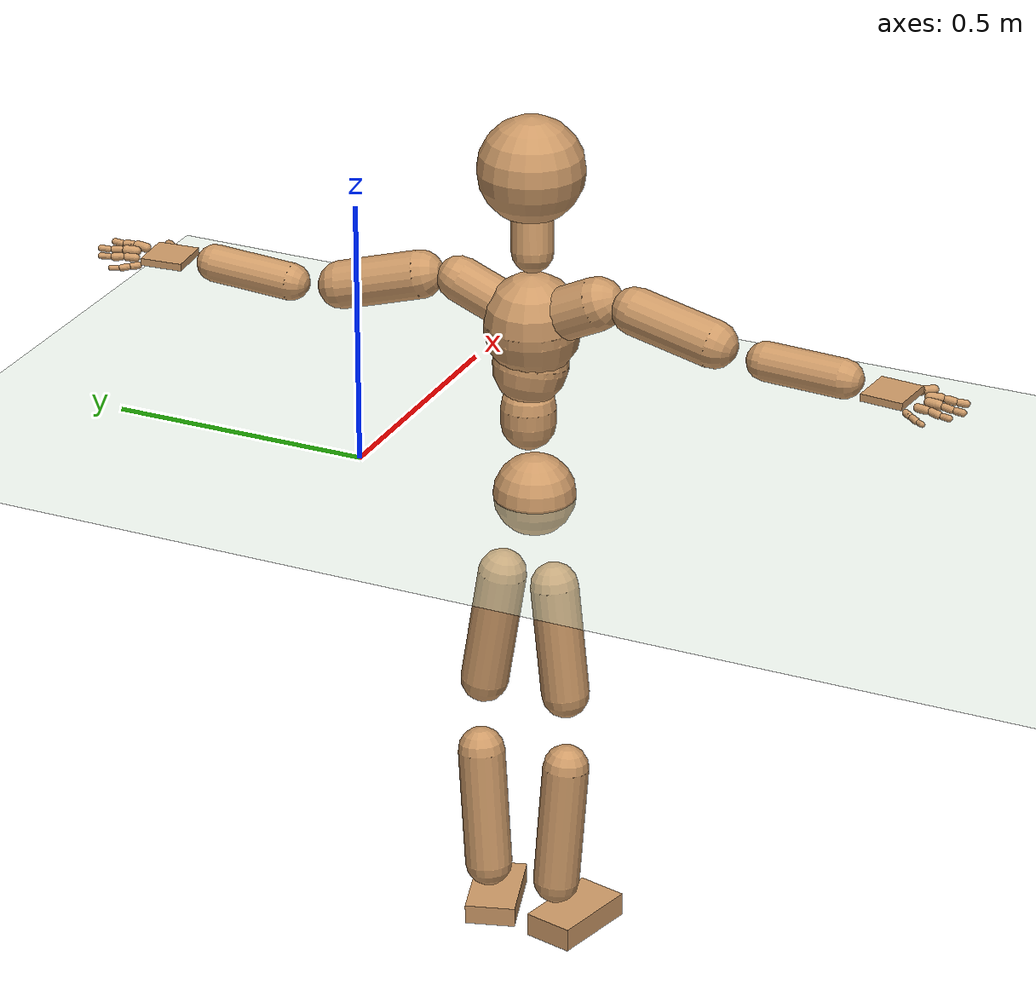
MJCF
<mujoco model="humanoid">
  <compiler coordinate="local" angle="radian"/>
  <default>
    <joint damping="0.0" armature="0.01" stiffness="0.0" limited="true"/>
    <geom conaffinity="1" condim="3" contype="7" margin="0.001" rgba="0.8 0.6 .4 1"/>
  </default>
  <asset>
    <texture type="skybox" builtin="gradient" rgb1=".4 .5 .6" rgb2="0 0 0" width="100" height="100"/>
    <texture builtin="flat" height="1278" mark="cross" markrgb="1 1 1" name="texgeom" random="0.01" rgb1="0.8 0.6 0.4" rgb2="0.8 0.6 0.4" type="cube" width="127"/>
    <texture builtin="checker" height="100" name="texplane" rgb1="0 0 0" rgb2="0.8 0.8 0.8" type="2d" width="100"/>
    <material name="MatPlane" reflectance="0.5" shininess="1" specular="1" texrepeat="60 60" texture="texplane"/>
    <material name="geom" texture="texgeom" texuniform="true"/>
  </asset>
  <worldbody>
    <light cutoff="100" diffuse="1 1 1" dir="-0 0 -1.3" directional="true" exponent="1" pos="0 0 1.3" specular=".1 .1 .1"/>
    <geom conaffinity="1" condim="3" name="floor" pos="0 0 0" rgba="0.8 0.9 0.8 1" size="100 100 .2" type="plane" material="MatPlane"/>
    <body name="Pelvis" pos="0.0004 -0.3542 0.0013">
      <freejoint name="Pelvis"/>
      <geom type="sphere" contype="1" conaffinity="1" density="500" size="0.0764" pos="0.0000 0.0000 0.0000" name="Pelvis"/>
      <body name="L_Hip" pos="-0.0248 0.0409 -0.085">
        <joint name="L_Hip_x" type="hinge" pos="0 0 0" axis="1 0 0" stiffness="800" damping="80" armature="0.02" range="-180.0000 180.0000"/>
        <joint name="L_Hip_y" type="hinge" pos="0 0 0" axis="0 1 0" stiffness="800" damping="80" armature="0.02" range="-180.0000 180.0000"/>
        <joint name="L_Hip_z" type="hinge" pos="0 0 0" axis="0 0 1" stiffness="800" damping="80" armature="0.02" range="-180.0000 180.0000"/>
        <geom type="capsule" contype="1" conaffinity="1" density="500" fromto="-0.0013 0.0113 -0.0745 -0.0053 0.0454 -0.2982" size="0.045" name="L_Hip"/>
        <body name="L_Knee" pos="-0.0066 0.0567 -0.3727">
          <joint name="L_Knee_x" type="hinge" pos="0 0 0" axis="1 0 0" stiffness="800" damping="80" armature="0.02" range="-180.0000 180.0000"/>
          <joint name="L_Knee_y" type="hinge" pos="0 0 0" axis="0 1 0" stiffness="800" damping="80" armature="0.02" range="-180.0000 180.0000"/>
          <joint name="L_Knee_z" type="hinge" pos="0 0 0" axis="0 0 1" stiffness="800" damping="80" armature="0.02" range="-180.0000 180.0000"/>
          <geom type="capsule" contype="1" conaffinity="1" density="500" fromto="-0.0059 -0.0077 -0.0755 -0.0237 -0.0308 -0.3021" size="0.0442" name="L_Knee"/>
          <body name="L_Ankle" pos="-0.0297 -0.0385 -0.3776">
            <joint name="L_Ankle_x" type="hinge" pos="0 0 0" axis="1 0 0" stiffness="800" damping="80" armature="0.02" range="-180.0000 180.0000"/>
            <joint name="L_Ankle_y" type="hinge" pos="0 0 0" axis="0 1 0" stiffness="800" damping="80" armature="0.02" range="-180.0000 180.0000"/>
            <joint name="L_Ankle_z" type="hinge" pos="0 0 0" axis="0 0 1" stiffness="800" damping="80" armature="0.02" range="-180.0000 180.0000"/>
            <geom type="box" contype="1" conaffinity="1" density="500" pos="0.0629 0.0191 -0.0277" size="0.0845 0.0471 0.0188" quat="0.9892 0.0000 0.0000 0.1468" name="L_Ankle"/>
            <body name="L_Toe" pos="0.1258 0.0382 -0.0554">
              <joint name="L_Toe_x" type="hinge" pos="0 0 0" axis="1 0 0" stiffness="500" damping="50" armature="0.02" range="-180.0000 180.0000"/>
              <joint name="L_Toe_y" type="hinge" pos="0 0 0" axis="0 1 0" stiffness="500" damping="50" armature="0.02" range="-180.0000 180.0000"/>
              <joint name="L_Toe_z" type="hinge" pos="0 0 0" axis="0 0 1" stiffness="500" damping="50" armature="0.02" range="-180.0000 180.0000"/>
              <geom type="box" contype="1" conaffinity="1" density="500" pos="0.0000 0.0000 0.0290" size="0.0009 0.0023 0.001" quat="0.9884 0.0000 0.0000 0.1517" name="L_Toe"/>
            </body>
          </body>
        </body>
      </body>
      <body name="R_Hip" pos="-0.0208 -0.0419 -0.0944">
        <joint name="R_Hip_x" type="hinge" pos="0 0 0" axis="1 0 0" stiffness="800" damping="80" armature="0.02" range="-180.0000 180.0000"/>
        <joint name="R_Hip_y" type="hinge" pos="0 0 0" axis="0 1 0" stiffness="800" damping="80" armature="0.02" range="-180.0000 180.0000"/>
        <joint name="R_Hip_z" type="hinge" pos="0 0 0" axis="0 0 1" stiffness="800" damping="80" armature="0.02" range="-180.0000 180.0000"/>
        <geom type="capsule" contype="1" conaffinity="1" density="500" fromto="-0.0023 -0.0089 -0.0713 -0.0092 -0.0355 -0.2854" size="0.0444" name="R_Hip"/>
        <body name="R_Knee" pos="-0.0115 -0.0444 -0.3567">
          <joint name="R_Knee_x" type="hinge" pos="0 0 0" axis="1 0 0" stiffness="800" damping="80" armature="0.02" range="-180.0000 180.0000"/>
          <joint name="R_Knee_y" type="hinge" pos="0 0 0" axis="0 1 0" stiffness="800" damping="80" armature="0.02" range="-180.0000 180.0000"/>
          <joint name="R_Knee_z" type="hinge" pos="0 0 0" axis="0 0 1" stiffness="800" damping="80" armature="0.02" range="-180.0000 180.0000"/>
          <geom type="capsule" contype="1" conaffinity="1" density="500" fromto="-0.0057 0.0034 -0.0781 -0.0227 0.0136 -0.3125" size="0.0433" name="R_Knee"/>
          <body name="R_Ankle" pos="-0.0283 0.0171 -0.3906">
            <joint name="R_Ankle_x" type="hinge" pos="0 0 0" axis="1 0 0" stiffness="800" damping="80" armature="0.02" range="-180.0000 180.0000"/>
            <joint name="R_Ankle_y" type="hinge" pos="0 0 0" axis="0 1 0" stiffness="800" damping="80" armature="0.02" range="-180.0000 180.0000"/>
            <joint name="R_Ankle_z" type="hinge" pos="0 0 0" axis="0 0 1" stiffness="800" damping="80" armature="0.02" range="-180.0000 180.0000"/>
            <geom type="box" contype="1" conaffinity="1" density="500" pos="0.0658 -0.0155 -0.0276" size="0.0845 0.0475 0.0227" quat="0.9933 0.0000 0.0000 -0.1158" name="R_Ankle"/>
            <body name="R_Toe" pos="0.1315 -0.0311 -0.0552">
              <joint name="R_Toe_x" type="hinge" pos="0 0 0" axis="1 0 0" stiffness="500" damping="50" armature="0.02" range="-180.0000 180.0000"/>
              <joint name="R_Toe_y" type="hinge" pos="0 0 0" axis="0 1 0" stiffness="500" damping="50" armature="0.02" range="-180.0000 180.0000"/>
              <joint name="R_Toe_z" type="hinge" pos="0 0 0" axis="0 0 1" stiffness="500" damping="50" armature="0.02" range="-180.0000 180.0000"/>
              <geom type="box" contype="1" conaffinity="1" density="500" pos="0.0000 0.0000 0.0250" size="0.0009 0.0023 0.001" quat="0.9943 0.0000 0.0000 -0.1070" name="R_Toe"/>
            </body>
          </body>
        </body>
      </body>
      <body name="Torso" pos="-0.0263 0.0004 0.0975">
        <joint name="Torso_x" type="hinge" pos="0 0 0" axis="1 0 0" stiffness="1000" damping="100" armature="0.02" range="-180.0000 180.0000"/>
        <joint name="Torso_y" type="hinge" pos="0 0 0" axis="0 1 0" stiffness="1000" damping="100" armature="0.02" range="-180.0000 180.0000"/>
        <joint name="Torso_z" type="hinge" pos="0 0 0" axis="0 0 1" stiffness="1000" damping="100" armature="0.02" range="-180.0000 180.0000"/>
        <geom type="capsule" contype="1" conaffinity="1" density="500" fromto="0.0027 0.0015 0.0851 0.0018 0.0010 0.0567" size="0.0508" name="Torso"/>
        <body name="Spine" pos="0.0046 0.0025 0.1418">
          <joint name="Spine_x" type="hinge" pos="0 0 0" axis="1 0 0" stiffness="1000" damping="100" armature="0.02" range="-180.0000 180.0000"/>
          <joint name="Spine_y" type="hinge" pos="0 0 0" axis="0 1 0" stiffness="1000" damping="100" armature="0.02" range="-180.0000 180.0000"/>
          <joint name="Spine_z" type="hinge" pos="0 0 0" axis="0 0 1" stiffness="1000" damping="100" armature="0.02" range="-180.0000 180.0000"/>
          <geom type="capsule" contype="1" conaffinity="1" density="500" fromto="0.0049 -0.0030 0.0320 0.0033 -0.0020 0.0213" size="0.069" name="Spine"/>
          <body name="Chest" pos="0.0082 -0.005 0.0533">
            <joint name="Chest_x" type="hinge" pos="0 0 0" axis="1 0 0" stiffness="1000" damping="100" armature="0.02" range="-180.0000 180.0000"/>
            <joint name="Chest_y" type="hinge" pos="0 0 0" axis="0 1 0" stiffness="1000" damping="100" armature="0.02" range="-180.0000 180.0000"/>
            <joint name="Chest_z" type="hinge" pos="0 0 0" axis="0 0 1" stiffness="1000" damping="100" armature="0.02" range="-180.0000 180.0000"/>
            <geom type="capsule" contype="1" conaffinity="1" density="500" fromto="-0.0049 -0.0006 0.0596 -0.0033 -0.0004 0.0397" size="0.0874" name="Chest"/>
            <body name="Neck" pos="-0.0141 -0.0054 0.1559">
              <joint name="Neck_x" type="hinge" pos="0 0 0" axis="1 0 0" stiffness="500" damping="50" armature="0.02" range="-180.0000 180.0000"/>
              <joint name="Neck_y" type="hinge" pos="0 0 0" axis="0 1 0" stiffness="500" damping="50" armature="0.02" range="-180.0000 180.0000"/>
              <joint name="Neck_z" type="hinge" pos="0 0 0" axis="0 0 1" stiffness="500" damping="50" armature="0.02" range="-180.0000 180.0000"/>
              <geom type="capsule" contype="1" conaffinity="1" density="500" fromto="0.0067 0.0038 0.0358 0.0266 0.0150 0.1434" size="0.0382" name="Neck"/>
              <body name="Head" pos="0.0333 0.0188 0.1792">
                <joint name="Head_x" type="hinge" pos="0 0 0" axis="1 0 0" stiffness="500" damping="50" armature="0.02" range="-180.0000 180.0000"/>
                <joint name="Head_y" type="hinge" pos="0 0 0" axis="0 1 0" stiffness="500" damping="50" armature="0.02" range="-180.0000 180.0000"/>
                <joint name="Head_z" type="hinge" pos="0 0 0" axis="0 0 1" stiffness="500" damping="50" armature="0.02" range="-180.0000 180.0000"/>
                <geom type="sphere" contype="1" conaffinity="1" density="500" size="0.0976" pos="0.0000 0.0000 0.0000" name="Head"/>
              </body>
            </body>
            <body name="L_Thorax" pos="-0.0033 0.0389 0.0709">
              <joint name="L_Thorax_x" type="hinge" pos="0 0 0" axis="1 0 0" stiffness="500" damping="50" armature="0.02" range="-180.0000 180.0000"/>
              <joint name="L_Thorax_y" type="hinge" pos="0 0 0" axis="0 1 0" stiffness="500" damping="50" armature="0.02" range="-180.0000 180.0000"/>
              <joint name="L_Thorax_z" type="hinge" pos="0 0 0" axis="0 0 1" stiffness="500" damping="50" armature="0.02" range="-180.0000 180.0000"/>
              <geom type="capsule" contype="1" conaffinity="1" density="500" fromto="-0.0024 0.0248 0.0114 -0.0094 0.0991 0.0458" size="0.0415" name="L_Thorax"/>
              <body name="L_Shoulder" pos="-0.0118 0.1239 0.0572">
                <joint name="L_Shoulder_x" type="hinge" pos="0 0 0" axis="1 0 0" stiffness="500" damping="50" armature="0.02" range="-180.0000 180.0000"/>
                <joint name="L_Shoulder_y" type="hinge" pos="0 0 0" axis="0 1 0" stiffness="500" damping="50" armature="0.02" range="-180.0000 180.0000"/>
                <joint name="L_Shoulder_z" type="hinge" pos="0 0 0" axis="0 0 1" stiffness="500" damping="50" armature="0.02" range="-180.0000 180.0000"/>
                <geom type="capsule" contype="1" conaffinity="1" density="500" fromto="-0.0062 0.0489 -0.0133 -0.0249 0.1955 -0.0532" size="0.0443" name="L_Shoulder"/>
                <body name="L_Elbow" pos="-0.0311 0.2444 -0.0665">
                  <joint name="L_Elbow_x" type="hinge" pos="0 0 0" axis="1 0 0" stiffness="500" damping="50" armature="0.02" range="-720.0000 720.0000"/>
                  <joint name="L_Elbow_y" type="hinge" pos="0 0 0" axis="0 1 0" stiffness="500" damping="50" armature="0.02" range="-720.0000 720.0000"/>
                  <joint name="L_Elbow_z" type="hinge" pos="0 0 0" axis="0 0 1" stiffness="500" damping="50" armature="0.02" range="-720.0000 720.0000"/>
                  <geom type="capsule" contype="1" conaffinity="1" density="500" fromto="-0.0013 0.0509 0.0034 -0.0053 0.2034 0.0136" size="0.0344" name="L_Elbow"/>
                  <body name="L_Wrist" pos="-0.0066 0.2543 0.017">
                    <joint name="L_Wrist_x" type="hinge" pos="0 0 0" axis="1 0 0" stiffness="300" damping="30" armature="0.02" range="-180.0000 180.0000"/>
                    <joint name="L_Wrist_y" type="hinge" pos="0 0 0" axis="0 1 0" stiffness="300" damping="30" armature="0.02" range="-180.0000 180.0000"/>
                    <joint name="L_Wrist_z" type="hinge" pos="0 0 0" axis="0 0 1" stiffness="300" damping="30" armature="0.02" range="-180.0000 180.0000"/>
                    <geom type="box" contype="1" conaffinity="1" density="500" pos="-0.0032 0.0407 -0.0056" size="0.0395 0.0408 0.0068" quat="0.7347 0.0000 0.0000 -0.6784" name="L_Wrist"/>
                    <body name="L_Index1" pos="0.0183 0.0956 -0.0085">
                      <joint name="L_Index1_x" type="hinge" pos="0 0 0" axis="1 0 0" stiffness="100" damping="10" armature="0.02" range="-180.0000 180.0000"/>
                      <joint name="L_Index1_y" type="hinge" pos="0 0 0" axis="0 1 0" stiffness="100" damping="10" armature="0.02" range="-180.0000 180.0000"/>
                      <joint name="L_Index1_z" type="hinge" pos="0 0 0" axis="0 0 1" stiffness="100" damping="10" armature="0.02" range="-180.0000 180.0000"/>
                      <geom type="capsule" contype="1" conaffinity="1" density="500" fromto="0.0007 0.0064 0.0003 0.0028 0.0255 0.0011" size="0.0088" name="L_Index1"/>
                      <body name="L_Index2" pos="0.0034 0.0319 0.0014">
                        <joint name="L_Index2_x" type="hinge" pos="0 0 0" axis="1 0 0" stiffness="100" damping="10" armature="0.02" range="-180.0000 180.0000"/>
                        <joint name="L_Index2_y" type="hinge" pos="0 0 0" axis="0 1 0" stiffness="100" damping="10" armature="0.02" range="-180.0000 180.0000"/>
                        <joint name="L_Index2_z" type="hinge" pos="0 0 0" axis="0 0 1" stiffness="100" damping="10" armature="0.02" range="-180.0000 180.0000"/>
                        <geom type="capsule" contype="1" conaffinity="1" density="500" fromto="0.0000 0.0045 -0.0005 0.0000 0.0181 -0.0019" size="0.0073" name="L_Index2"/>
                        <body name="L_Index3" pos="0 0.0226 -0.0024">
                          <joint name="L_Index3_x" type="hinge" pos="0 0 0" axis="1 0 0" stiffness="100" damping="10" armature="0.02" range="-180.0000 180.0000"/>
                          <joint name="L_Index3_y" type="hinge" pos="0 0 0" axis="0 1 0" stiffness="100" damping="10" armature="0.02" range="-180.0000 180.0000"/>
                          <joint name="L_Index3_z" type="hinge" pos="0 0 0" axis="0 0 1" stiffness="100" damping="10" armature="0.02" range="-180.0000 180.0000"/>
                          <geom type="capsule" contype="1" conaffinity="1" density="500" fromto="0.0004 0.0049 -0.0001 0.0016 0.0197 -0.0003" size="0.0063" name="L_Index3"/>
                        </body>
                      </body>
                    </body>
                    <body name="L_Middle1" pos="-0.0047 0.1033 -0.0065">
                      <joint name="L_Middle1_x" type="hinge" pos="0 0 0" axis="1 0 0" stiffness="100" damping="10" armature="0.02" range="-180.0000 180.0000"/>
                      <joint name="L_Middle1_y" type="hinge" pos="0 0 0" axis="0 1 0" stiffness="100" damping="10" armature="0.02" range="-180.0000 180.0000"/>
                      <joint name="L_Middle1_z" type="hinge" pos="0 0 0" axis="0 0 1" stiffness="100" damping="10" armature="0.02" range="-180.0000 180.0000"/>
                      <geom type="capsule" contype="1" conaffinity="1" density="500" fromto="-0.0009 0.0061 -0.0000 -0.0035 0.0243 -0.0000" size="0.009" name="L_Middle1"/>
                      <body name="L_Middle2" pos="-0.0044 0.0304 0">
                        <joint name="L_Middle2_x" type="hinge" pos="0 0 0" axis="1 0 0" stiffness="100" damping="10" armature="0.02" range="-180.0000 180.0000"/>
                        <joint name="L_Middle2_y" type="hinge" pos="0 0 0" axis="0 1 0" stiffness="100" damping="10" armature="0.02" range="-180.0000 180.0000"/>
                        <joint name="L_Middle2_z" type="hinge" pos="0 0 0" axis="0 0 1" stiffness="100" damping="10" armature="0.02" range="-180.0000 180.0000"/>
                        <geom type="capsule" contype="1" conaffinity="1" density="500" fromto="-0.0008 0.0047 -0.0005 -0.0034 0.0187 -0.0019" size="0.0067" name="L_Middle2"/>
                        <body name="L_Middle3" pos="-0.0042 0.0234 -0.0023">
                          <joint name="L_Middle3_x" type="hinge" pos="0 0 0" axis="1 0 0" stiffness="100" damping="10" armature="0.02" range="-180.0000 180.0000"/>
                          <joint name="L_Middle3_y" type="hinge" pos="0 0 0" axis="0 1 0" stiffness="100" damping="10" armature="0.02" range="-180.0000 180.0000"/>
                          <joint name="L_Middle3_z" type="hinge" pos="0 0 0" axis="0 0 1" stiffness="100" damping="10" armature="0.02" range="-180.0000 180.0000"/>
                          <geom type="capsule" contype="1" conaffinity="1" density="500" fromto="-0.0004 0.0051 -0.0001 -0.0018 0.0203 -0.0003" size="0.0061" name="L_Middle3"/>
                        </body>
                      </body>
                    </body>
                    <body name="L_Pinky1" pos="-0.0433 0.0794 -0.0139">
                      <joint name="L_Pinky1_x" type="hinge" pos="0 0 0" axis="1 0 0" stiffness="100" damping="10" armature="0.02" range="-180.0000 180.0000"/>
                      <joint name="L_Pinky1_y" type="hinge" pos="0 0 0" axis="0 1 0" stiffness="100" damping="10" armature="0.02" range="-180.0000 180.0000"/>
                      <joint name="L_Pinky1_z" type="hinge" pos="0 0 0" axis="0 0 1" stiffness="100" damping="10" armature="0.02" range="-180.0000 180.0000"/>
                      <geom type="capsule" contype="1" conaffinity="1" density="500" fromto="-0.0023 0.0032 -0.0003 -0.0091 0.0128 -0.0012" size="0.0064" name="L_Pinky1"/>
                      <body name="L_Pinky2" pos="-0.0114 0.016 -0.0015">
                        <joint name="L_Pinky2_x" type="hinge" pos="0 0 0" axis="1 0 0" stiffness="100" damping="10" armature="0.02" range="-180.0000 180.0000"/>
                        <joint name="L_Pinky2_y" type="hinge" pos="0 0 0" axis="0 1 0" stiffness="100" damping="10" armature="0.02" range="-180.0000 180.0000"/>
                        <joint name="L_Pinky2_z" type="hinge" pos="0 0 0" axis="0 0 1" stiffness="100" damping="10" armature="0.02" range="-180.0000 180.0000"/>
                        <geom type="capsule" contype="1" conaffinity="1" density="500" fromto="-0.0022 0.0032 -0.0003 -0.0087 0.0126 -0.0013" size="0.0062" name="L_Pinky2"/>
                        <body name="L_Pinky3" pos="-0.0108 0.0158 -0.0016">
                          <joint name="L_Pinky3_x" type="hinge" pos="0 0 0" axis="1 0 0" stiffness="100" damping="10" armature="0.02" range="-180.0000 180.0000"/>
                          <joint name="L_Pinky3_y" type="hinge" pos="0 0 0" axis="0 1 0" stiffness="100" damping="10" armature="0.02" range="-180.0000 180.0000"/>
                          <joint name="L_Pinky3_z" type="hinge" pos="0 0 0" axis="0 0 1" stiffness="100" damping="10" armature="0.02" range="-180.0000 180.0000"/>
                          <geom type="capsule" contype="1" conaffinity="1" density="500" fromto="-0.0018 0.0036 0.0001 -0.0071 0.0142 0.0003" size="0.0048" name="L_Pinky3"/>
                        </body>
                      </body>
                    </body>
                    <body name="L_Ring1" pos="-0.0273 0.0919 -0.0091">
                      <joint name="L_Ring1_x" type="hinge" pos="0 0 0" axis="1 0 0" stiffness="100" damping="10" armature="0.02" range="-180.0000 180.0000"/>
                      <joint name="L_Ring1_y" type="hinge" pos="0 0 0" axis="0 1 0" stiffness="100" damping="10" armature="0.02" range="-180.0000 180.0000"/>
                      <joint name="L_Ring1_z" type="hinge" pos="0 0 0" axis="0 0 1" stiffness="100" damping="10" armature="0.02" range="-180.0000 180.0000"/>
                      <geom type="capsule" contype="1" conaffinity="1" density="500" fromto="-0.0010 0.0056 0.0001 -0.0040 0.0223 0.0002" size="0.0076" name="L_Ring1"/>
                      <body name="L_Ring2" pos="-0.0049 0.0279 0.0003">
                        <joint name="L_Ring2_x" type="hinge" pos="0 0 0" axis="1 0 0" stiffness="100" damping="10" armature="0.02" range="-180.0000 180.0000"/>
                        <joint name="L_Ring2_y" type="hinge" pos="0 0 0" axis="0 1 0" stiffness="100" damping="10" armature="0.02" range="-180.0000 180.0000"/>
                        <joint name="L_Ring2_z" type="hinge" pos="0 0 0" axis="0 0 1" stiffness="100" damping="10" armature="0.02" range="-180.0000 180.0000"/>
                        <geom type="capsule" contype="1" conaffinity="1" density="500" fromto="-0.0013 0.0046 -0.0004 -0.0052 0.0183 -0.0017" size="0.0072" name="L_Ring2"/>
                        <body name="L_Ring3" pos="-0.0065 0.0228 -0.0021">
                          <joint name="L_Ring3_x" type="hinge" pos="0 0 0" axis="1 0 0" stiffness="100" damping="10" armature="0.02" range="-180.0000 180.0000"/>
                          <joint name="L_Ring3_y" type="hinge" pos="0 0 0" axis="0 1 0" stiffness="100" damping="10" armature="0.02" range="-180.0000 180.0000"/>
                          <joint name="L_Ring3_z" type="hinge" pos="0 0 0" axis="0 0 1" stiffness="100" damping="10" armature="0.02" range="-180.0000 180.0000"/>
                          <geom type="capsule" contype="1" conaffinity="1" density="500" fromto="-0.0009 0.0050 -0.0000 -0.0036 0.0199 -0.0001" size="0.0057" name="L_Ring3"/>
                        </body>
                      </body>
                    </body>
                    <body name="L_Thumb1" pos="0.0246 0.0368 -0.0182">
                      <joint name="L_Thumb1_x" type="hinge" pos="0 0 0" axis="1 0 0" stiffness="100" damping="10" armature="0.02" range="-180.0000 180.0000"/>
                      <joint name="L_Thumb1_y" type="hinge" pos="0 0 0" axis="0 1 0" stiffness="100" damping="10" armature="0.02" range="-180.0000 180.0000"/>
                      <joint name="L_Thumb1_z" type="hinge" pos="0 0 0" axis="0 0 1" stiffness="100" damping="10" armature="0.02" range="-180.0000 180.0000"/>
                      <geom type="capsule" contype="1" conaffinity="1" density="500" fromto="0.0052 0.0032 0.0002 0.0206 0.0127 0.0007" size="0.0113" name="L_Thumb1"/>
                      <body name="L_Thumb2" pos="0.0258 0.0158 0.0009">
                        <joint name="L_Thumb2_x" type="hinge" pos="0 0 0" axis="1 0 0" stiffness="100" damping="10" armature="0.02" range="-180.0000 180.0000"/>
                        <joint name="L_Thumb2_y" type="hinge" pos="0 0 0" axis="0 1 0" stiffness="100" damping="10" armature="0.02" range="-180.0000 180.0000"/>
                        <joint name="L_Thumb2_z" type="hinge" pos="0 0 0" axis="0 0 1" stiffness="100" damping="10" armature="0.02" range="-180.0000 180.0000"/>
                        <geom type="capsule" contype="1" conaffinity="1" density="500" fromto="0.0033 0.0040 -0.0009 0.0132 0.0159 -0.0035" size="0.009" name="L_Thumb2"/>
                        <body name="L_Thumb3" pos="0.0165 0.0199 -0.0043">
                          <joint name="L_Thumb3_x" type="hinge" pos="0 0 0" axis="1 0 0" stiffness="100" damping="10" armature="0.02" range="-180.0000 180.0000"/>
                          <joint name="L_Thumb3_y" type="hinge" pos="0 0 0" axis="0 1 0" stiffness="100" damping="10" armature="0.02" range="-180.0000 180.0000"/>
                          <joint name="L_Thumb3_z" type="hinge" pos="0 0 0" axis="0 0 1" stiffness="100" damping="10" armature="0.02" range="-180.0000 180.0000"/>
                          <geom type="capsule" contype="1" conaffinity="1" density="500" fromto="0.0037 0.0044 -0.0005 0.0148 0.0175 -0.0019" size="0.0084" name="L_Thumb3"/>
                        </body>
                      </body>
                    </body>
                  </body>
                </body>
              </body>
            </body>
            <body name="R_Thorax" pos="-0.0074 -0.0368 0.0711">
              <joint name="R_Thorax_x" type="hinge" pos="0 0 0" axis="1 0 0" stiffness="500" damping="50" armature="0.02" range="-180.0000 180.0000"/>
              <joint name="R_Thorax_y" type="hinge" pos="0 0 0" axis="0 1 0" stiffness="500" damping="50" armature="0.02" range="-180.0000 180.0000"/>
              <joint name="R_Thorax_z" type="hinge" pos="0 0 0" axis="0 0 1" stiffness="500" damping="50" armature="0.02" range="-180.0000 180.0000"/>
              <geom type="capsule" contype="1" conaffinity="1" density="500" fromto="-0.0008 -0.0232 0.0114 -0.0030 -0.0926 0.0455" size="0.0487" name="R_Thorax"/>
              <body name="R_Shoulder" pos="-0.0038 -0.1158 0.0569">
                <joint name="R_Shoulder_x" type="hinge" pos="0 0 0" axis="1 0 0" stiffness="500" damping="50" armature="0.02" range="-180.0000 180.0000"/>
                <joint name="R_Shoulder_y" type="hinge" pos="0 0 0" axis="0 1 0" stiffness="500" damping="50" armature="0.02" range="-180.0000 180.0000"/>
                <joint name="R_Shoulder_z" type="hinge" pos="0 0 0" axis="0 0 1" stiffness="500" damping="50" armature="0.02" range="-180.0000 180.0000"/>
                <geom type="capsule" contype="1" conaffinity="1" density="500" fromto="-0.0054 -0.0520 -0.0090 -0.0216 -0.2080 -0.0359" size="0.0432" name="R_Shoulder"/>
                <body name="R_Elbow" pos="-0.027 -0.2599 -0.0449">
                  <joint name="R_Elbow_x" type="hinge" pos="0 0 0" axis="1 0 0" stiffness="500" damping="50" armature="0.02" range="-720.0000 720.0000"/>
                  <joint name="R_Elbow_y" type="hinge" pos="0 0 0" axis="0 1 0" stiffness="500" damping="50" armature="0.02" range="-720.0000 720.0000"/>
                  <joint name="R_Elbow_z" type="hinge" pos="0 0 0" axis="0 0 1" stiffness="500" damping="50" armature="0.02" range="-720.0000 720.0000"/>
                  <geom type="capsule" contype="1" conaffinity="1" density="500" fromto="-0.0027 -0.0492 -0.0003 -0.0109 -0.1966 -0.0012" size="0.0352" name="R_Elbow"/>
                  <body name="R_Wrist" pos="-0.0136 -0.2458 -0.0014">
                    <joint name="R_Wrist_x" type="hinge" pos="0 0 0" axis="1 0 0" stiffness="300" damping="30" armature="0.02" range="-180.0000 180.0000"/>
                    <joint name="R_Wrist_y" type="hinge" pos="0 0 0" axis="0 1 0" stiffness="300" damping="30" armature="0.02" range="-180.0000 180.0000"/>
                    <joint name="R_Wrist_z" type="hinge" pos="0 0 0" axis="0 0 1" stiffness="300" damping="30" armature="0.02" range="-180.0000 180.0000"/>
                    <geom type="box" contype="1" conaffinity="1" density="500" pos="-0.0037 -0.0406 -0.0071" size="0.0395 0.0418 0.0069" quat="0.7384 0.0000 0.0000 0.6743" name="R_Wrist"/>
                    <body name="R_Index1" pos="0.0174 -0.0954 -0.0115">
                      <joint name="R_Index1_x" type="hinge" pos="0 0 0" axis="1 0 0" stiffness="100" damping="10" armature="0.02" range="-180.0000 180.0000"/>
                      <joint name="R_Index1_y" type="hinge" pos="0 0 0" axis="0 1 0" stiffness="100" damping="10" armature="0.02" range="-180.0000 180.0000"/>
                      <joint name="R_Index1_z" type="hinge" pos="0 0 0" axis="0 0 1" stiffness="100" damping="10" armature="0.02" range="-180.0000 180.0000"/>
                      <geom type="capsule" contype="1" conaffinity="1" density="500" fromto="0.0007 -0.0064 0.0003 0.0028 -0.0255 0.0011" size="0.0088" name="R_Index1"/>
                      <body name="R_Index2" pos="0.0034 -0.0319 0.0014">
                        <joint name="R_Index2_x" type="hinge" pos="0 0 0" axis="1 0 0" stiffness="100" damping="10" armature="0.02" range="-180.0000 180.0000"/>
                        <joint name="R_Index2_y" type="hinge" pos="0 0 0" axis="0 1 0" stiffness="100" damping="10" armature="0.02" range="-180.0000 180.0000"/>
                        <joint name="R_Index2_z" type="hinge" pos="0 0 0" axis="0 0 1" stiffness="100" damping="10" armature="0.02" range="-180.0000 180.0000"/>
                        <geom type="capsule" contype="1" conaffinity="1" density="500" fromto="0.0000 -0.0045 -0.0005 0.0000 -0.0181 -0.0019" size="0.0073" name="R_Index2"/>
                        <body name="R_Index3" pos="0 -0.0226 -0.0024">
                          <joint name="R_Index3_x" type="hinge" pos="0 0 0" axis="1 0 0" stiffness="100" damping="10" armature="0.02" range="-180.0000 180.0000"/>
                          <joint name="R_Index3_y" type="hinge" pos="0 0 0" axis="0 1 0" stiffness="100" damping="10" armature="0.02" range="-180.0000 180.0000"/>
                          <joint name="R_Index3_z" type="hinge" pos="0 0 0" axis="0 0 1" stiffness="100" damping="10" armature="0.02" range="-180.0000 180.0000"/>
                          <geom type="capsule" contype="1" conaffinity="1" density="500" fromto="0.0004 -0.0041 -0.0001 0.0016 -0.0165 -0.0003" size="0.0066" name="R_Index3"/>
                        </body>
                      </body>
                    </body>
                    <body name="R_Middle1" pos="-0.0056 -0.1032 -0.0095">
                      <joint name="R_Middle1_x" type="hinge" pos="0 0 0" axis="1 0 0" stiffness="100" damping="10" armature="0.02" range="-180.0000 180.0000"/>
                      <joint name="R_Middle1_y" type="hinge" pos="0 0 0" axis="0 1 0" stiffness="100" damping="10" armature="0.02" range="-180.0000 180.0000"/>
                      <joint name="R_Middle1_z" type="hinge" pos="0 0 0" axis="0 0 1" stiffness="100" damping="10" armature="0.02" range="-180.0000 180.0000"/>
                      <geom type="capsule" contype="1" conaffinity="1" density="500" fromto="-0.0009 -0.0061 -0.0000 -0.0035 -0.0243 -0.0000" size="0.009" name="R_Middle1"/>
                      <body name="R_Middle2" pos="-0.0044 -0.0304 0">
                        <joint name="R_Middle2_x" type="hinge" pos="0 0 0" axis="1 0 0" stiffness="100" damping="10" armature="0.02" range="-180.0000 180.0000"/>
                        <joint name="R_Middle2_y" type="hinge" pos="0 0 0" axis="0 1 0" stiffness="100" damping="10" armature="0.02" range="-180.0000 180.0000"/>
                        <joint name="R_Middle2_z" type="hinge" pos="0 0 0" axis="0 0 1" stiffness="100" damping="10" armature="0.02" range="-180.0000 180.0000"/>
                        <geom type="capsule" contype="1" conaffinity="1" density="500" fromto="-0.0008 -0.0047 -0.0005 -0.0034 -0.0187 -0.0019" size="0.0067" name="R_Middle2"/>
                        <body name="R_Middle3" pos="-0.0042 -0.0234 -0.0023">
                          <joint name="R_Middle3_x" type="hinge" pos="0 0 0" axis="1 0 0" stiffness="100" damping="10" armature="0.02" range="-180.0000 180.0000"/>
                          <joint name="R_Middle3_y" type="hinge" pos="0 0 0" axis="0 1 0" stiffness="100" damping="10" armature="0.02" range="-180.0000 180.0000"/>
                          <joint name="R_Middle3_z" type="hinge" pos="0 0 0" axis="0 0 1" stiffness="100" damping="10" armature="0.02" range="-180.0000 180.0000"/>
                          <geom type="capsule" contype="1" conaffinity="1" density="500" fromto="-0.0004 -0.0043 -0.0001 -0.0018 -0.0171 -0.0003" size="0.0064" name="R_Middle3"/>
                        </body>
                      </body>
                    </body>
                    <body name="R_Pinky1" pos="-0.0442 -0.0793 -0.017">
                      <joint name="R_Pinky1_x" type="hinge" pos="0 0 0" axis="1 0 0" stiffness="100" damping="10" armature="0.02" range="-180.0000 180.0000"/>
                      <joint name="R_Pinky1_y" type="hinge" pos="0 0 0" axis="0 1 0" stiffness="100" damping="10" armature="0.02" range="-180.0000 180.0000"/>
                      <joint name="R_Pinky1_z" type="hinge" pos="0 0 0" axis="0 0 1" stiffness="100" damping="10" armature="0.02" range="-180.0000 180.0000"/>
                      <geom type="capsule" contype="1" conaffinity="1" density="500" fromto="-0.0023 -0.0032 -0.0003 -0.0091 -0.0128 -0.0012" size="0.0064" name="R_Pinky1"/>
                      <body name="R_Pinky2" pos="-0.0114 -0.016 -0.0015">
                        <joint name="R_Pinky2_x" type="hinge" pos="0 0 0" axis="1 0 0" stiffness="100" damping="10" armature="0.02" range="-180.0000 180.0000"/>
                        <joint name="R_Pinky2_y" type="hinge" pos="0 0 0" axis="0 1 0" stiffness="100" damping="10" armature="0.02" range="-180.0000 180.0000"/>
                        <joint name="R_Pinky2_z" type="hinge" pos="0 0 0" axis="0 0 1" stiffness="100" damping="10" armature="0.02" range="-180.0000 180.0000"/>
                        <geom type="capsule" contype="1" conaffinity="1" density="500" fromto="-0.0022 -0.0032 -0.0003 -0.0087 -0.0126 -0.0013" size="0.0062" name="R_Pinky2"/>
                        <body name="R_Pinky3" pos="-0.0108 -0.0158 -0.0016">
                          <joint name="R_Pinky3_x" type="hinge" pos="0 0 0" axis="1 0 0" stiffness="100" damping="10" armature="0.02" range="-180.0000 180.0000"/>
                          <joint name="R_Pinky3_y" type="hinge" pos="0 0 0" axis="0 1 0" stiffness="100" damping="10" armature="0.02" range="-180.0000 180.0000"/>
                          <joint name="R_Pinky3_z" type="hinge" pos="0 0 0" axis="0 0 1" stiffness="100" damping="10" armature="0.02" range="-180.0000 180.0000"/>
                          <geom type="capsule" contype="1" conaffinity="1" density="500" fromto="-0.0018 -0.0028 0.0001 -0.0071 -0.0110 0.0003" size="0.005" name="R_Pinky3"/>
                        </body>
                      </body>
                    </body>
                    <body name="R_Ring1" pos="-0.0282 -0.0918 -0.0122">
                      <joint name="R_Ring1_x" type="hinge" pos="0 0 0" axis="1 0 0" stiffness="100" damping="10" armature="0.02" range="-180.0000 180.0000"/>
                      <joint name="R_Ring1_y" type="hinge" pos="0 0 0" axis="0 1 0" stiffness="100" damping="10" armature="0.02" range="-180.0000 180.0000"/>
                      <joint name="R_Ring1_z" type="hinge" pos="0 0 0" axis="0 0 1" stiffness="100" damping="10" armature="0.02" range="-180.0000 180.0000"/>
                      <geom type="capsule" contype="1" conaffinity="1" density="500" fromto="-0.0010 -0.0056 0.0001 -0.0040 -0.0223 0.0002" size="0.0076" name="R_Ring1"/>
                      <body name="R_Ring2" pos="-0.0049 -0.0279 0.0003">
                        <joint name="R_Ring2_x" type="hinge" pos="0 0 0" axis="1 0 0" stiffness="100" damping="10" armature="0.02" range="-180.0000 180.0000"/>
                        <joint name="R_Ring2_y" type="hinge" pos="0 0 0" axis="0 1 0" stiffness="100" damping="10" armature="0.02" range="-180.0000 180.0000"/>
                        <joint name="R_Ring2_z" type="hinge" pos="0 0 0" axis="0 0 1" stiffness="100" damping="10" armature="0.02" range="-180.0000 180.0000"/>
                        <geom type="capsule" contype="1" conaffinity="1" density="500" fromto="-0.0013 -0.0046 -0.0004 -0.0052 -0.0182 -0.0017" size="0.0072" name="R_Ring2"/>
                        <body name="R_Ring3" pos="-0.0065 -0.0228 -0.0021">
                          <joint name="R_Ring3_x" type="hinge" pos="0 0 0" axis="1 0 0" stiffness="100" damping="10" armature="0.02" range="-180.0000 180.0000"/>
                          <joint name="R_Ring3_y" type="hinge" pos="0 0 0" axis="0 1 0" stiffness="100" damping="10" armature="0.02" range="-180.0000 180.0000"/>
                          <joint name="R_Ring3_z" type="hinge" pos="0 0 0" axis="0 0 1" stiffness="100" damping="10" armature="0.02" range="-180.0000 180.0000"/>
                          <geom type="capsule" contype="1" conaffinity="1" density="500" fromto="-0.0009 -0.0042 -0.0000 -0.0036 -0.0166 -0.0001" size="0.0059" name="R_Ring3"/>
                        </body>
                      </body>
                    </body>
                    <body name="R_Thumb1" pos="0.0237 -0.0367 -0.0212">
                      <joint name="R_Thumb1_x" type="hinge" pos="0 0 0" axis="1 0 0" stiffness="100" damping="10" armature="0.02" range="-180.0000 180.0000"/>
                      <joint name="R_Thumb1_y" type="hinge" pos="0 0 0" axis="0 1 0" stiffness="100" damping="10" armature="0.02" range="-180.0000 180.0000"/>
                      <joint name="R_Thumb1_z" type="hinge" pos="0 0 0" axis="0 0 1" stiffness="100" damping="10" armature="0.02" range="-180.0000 180.0000"/>
                      <geom type="capsule" contype="1" conaffinity="1" density="500" fromto="0.0052 -0.0032 0.0002 0.0206 -0.0127 0.0007" size="0.0113" name="R_Thumb1"/>
                      <body name="R_Thumb2" pos="0.0258 -0.0158 0.0009">
                        <joint name="R_Thumb2_x" type="hinge" pos="0 0 0" axis="1 0 0" stiffness="100" damping="10" armature="0.02" range="-180.0000 180.0000"/>
                        <joint name="R_Thumb2_y" type="hinge" pos="0 0 0" axis="0 1 0" stiffness="100" damping="10" armature="0.02" range="-180.0000 180.0000"/>
                        <joint name="R_Thumb2_z" type="hinge" pos="0 0 0" axis="0 0 1" stiffness="100" damping="10" armature="0.02" range="-180.0000 180.0000"/>
                        <geom type="capsule" contype="1" conaffinity="1" density="500" fromto="0.0033 -0.0040 -0.0009 0.0132 -0.0159 -0.0035" size="0.009" name="R_Thumb2"/>
                        <body name="R_Thumb3" pos="0.0165 -0.0199 -0.0043">
                          <joint name="R_Thumb3_x" type="hinge" pos="0 0 0" axis="1 0 0" stiffness="100" damping="10" armature="0.02" range="-180.0000 180.0000"/>
                          <joint name="R_Thumb3_y" type="hinge" pos="0 0 0" axis="0 1 0" stiffness="100" damping="10" armature="0.02" range="-180.0000 180.0000"/>
                          <joint name="R_Thumb3_z" type="hinge" pos="0 0 0" axis="0 0 1" stiffness="100" damping="10" armature="0.02" range="-180.0000 180.0000"/>
                          <geom type="capsule" contype="1" conaffinity="1" density="500" fromto="0.0037 -0.0036 -0.0005 0.0148 -0.0143 -0.0019" size="0.0086" name="R_Thumb3"/>
                        </body>
                      </body>
                    </body>
                  </body>
                </body>
              </body>
            </body>
          </body>
        </body>
      </body>
    </body>
  </worldbody>
  <actuator>
    <motor name="L_Hip_x" joint="L_Hip_x" gear="500"/>
    <motor name="L_Hip_y" joint="L_Hip_y" gear="500"/>
    <motor name="L_Hip_z" joint="L_Hip_z" gear="500"/>
    <motor name="L_Knee_x" joint="L_Knee_x" gear="500"/>
    <motor name="L_Knee_y" joint="L_Knee_y" gear="500"/>
    <motor name="L_Knee_z" joint="L_Knee_z" gear="500"/>
    <motor name="L_Ankle_x" joint="L_Ankle_x" gear="500"/>
    <motor name="L_Ankle_y" joint="L_Ankle_y" gear="500"/>
    <motor name="L_Ankle_z" joint="L_Ankle_z" gear="500"/>
    <motor name="L_Toe_x" joint="L_Toe_x" gear="500"/>
    <motor name="L_Toe_y" joint="L_Toe_y" gear="500"/>
    <motor name="L_Toe_z" joint="L_Toe_z" gear="500"/>
    <motor name="R_Hip_x" joint="R_Hip_x" gear="500"/>
    <motor name="R_Hip_y" joint="R_Hip_y" gear="500"/>
    <motor name="R_Hip_z" joint="R_Hip_z" gear="500"/>
    <motor name="R_Knee_x" joint="R_Knee_x" gear="500"/>
    <motor name="R_Knee_y" joint="R_Knee_y" gear="500"/>
    <motor name="R_Knee_z" joint="R_Knee_z" gear="500"/>
    <motor name="R_Ankle_x" joint="R_Ankle_x" gear="500"/>
    <motor name="R_Ankle_y" joint="R_Ankle_y" gear="500"/>
    <motor name="R_Ankle_z" joint="R_Ankle_z" gear="500"/>
    <motor name="R_Toe_x" joint="R_Toe_x" gear="500"/>
    <motor name="R_Toe_y" joint="R_Toe_y" gear="500"/>
    <motor name="R_Toe_z" joint="R_Toe_z" gear="500"/>
    <motor name="Torso_x" joint="Torso_x" gear="500"/>
    <motor name="Torso_y" joint="Torso_y" gear="500"/>
    <motor name="Torso_z" joint="Torso_z" gear="500"/>
    <motor name="Spine_x" joint="Spine_x" gear="500"/>
    <motor name="Spine_y" joint="Spine_y" gear="500"/>
    <motor name="Spine_z" joint="Spine_z" gear="500"/>
    <motor name="Chest_x" joint="Chest_x" gear="500"/>
    <motor name="Chest_y" joint="Chest_y" gear="500"/>
    <motor name="Chest_z" joint="Chest_z" gear="500"/>
    <motor name="Neck_x" joint="Neck_x" gear="500"/>
    <motor name="Neck_y" joint="Neck_y" gear="500"/>
    <motor name="Neck_z" joint="Neck_z" gear="500"/>
    <motor name="Head_x" joint="Head_x" gear="500"/>
    <motor name="Head_y" joint="Head_y" gear="500"/>
    <motor name="Head_z" joint="Head_z" gear="500"/>
    <motor name="L_Thorax_x" joint="L_Thorax_x" gear="500"/>
    <motor name="L_Thorax_y" joint="L_Thorax_y" gear="500"/>
    <motor name="L_Thorax_z" joint="L_Thorax_z" gear="500"/>
    <motor name="L_Shoulder_x" joint="L_Shoulder_x" gear="500"/>
    <motor name="L_Shoulder_y" joint="L_Shoulder_y" gear="500"/>
    <motor name="L_Shoulder_z" joint="L_Shoulder_z" gear="500"/>
    <motor name="L_Elbow_x" joint="L_Elbow_x" gear="500"/>
    <motor name="L_Elbow_y" joint="L_Elbow_y" gear="500"/>
    <motor name="L_Elbow_z" joint="L_Elbow_z" gear="500"/>
    <motor name="L_Wrist_x" joint="L_Wrist_x" gear="500"/>
    <motor name="L_Wrist_y" joint="L_Wrist_y" gear="500"/>
    <motor name="L_Wrist_z" joint="L_Wrist_z" gear="500"/>
    <motor name="L_Index1_x" joint="L_Index1_x" gear="500"/>
    <motor name="L_Index1_y" joint="L_Index1_y" gear="500"/>
    <motor name="L_Index1_z" joint="L_Index1_z" gear="500"/>
    <motor name="L_Index2_x" joint="L_Index2_x" gear="500"/>
    <motor name="L_Index2_y" joint="L_Index2_y" gear="500"/>
    <motor name="L_Index2_z" joint="L_Index2_z" gear="500"/>
    <motor name="L_Index3_x" joint="L_Index3_x" gear="500"/>
    <motor name="L_Index3_y" joint="L_Index3_y" gear="500"/>
    <motor name="L_Index3_z" joint="L_Index3_z" gear="500"/>
    <motor name="L_Middle1_x" joint="L_Middle1_x" gear="500"/>
    <motor name="L_Middle1_y" joint="L_Middle1_y" gear="500"/>
    <motor name="L_Middle1_z" joint="L_Middle1_z" gear="500"/>
    <motor name="L_Middle2_x" joint="L_Middle2_x" gear="500"/>
    <motor name="L_Middle2_y" joint="L_Middle2_y" gear="500"/>
    <motor name="L_Middle2_z" joint="L_Middle2_z" gear="500"/>
    <motor name="L_Middle3_x" joint="L_Middle3_x" gear="500"/>
    <motor name="L_Middle3_y" joint="L_Middle3_y" gear="500"/>
    <motor name="L_Middle3_z" joint="L_Middle3_z" gear="500"/>
    <motor name="L_Pinky1_x" joint="L_Pinky1_x" gear="500"/>
    <motor name="L_Pinky1_y" joint="L_Pinky1_y" gear="500"/>
    <motor name="L_Pinky1_z" joint="L_Pinky1_z" gear="500"/>
    <motor name="L_Pinky2_x" joint="L_Pinky2_x" gear="500"/>
    <motor name="L_Pinky2_y" joint="L_Pinky2_y" gear="500"/>
    <motor name="L_Pinky2_z" joint="L_Pinky2_z" gear="500"/>
    <motor name="L_Pinky3_x" joint="L_Pinky3_x" gear="500"/>
    <motor name="L_Pinky3_y" joint="L_Pinky3_y" gear="500"/>
    <motor name="L_Pinky3_z" joint="L_Pinky3_z" gear="500"/>
    <motor name="L_Ring1_x" joint="L_Ring1_x" gear="500"/>
    <motor name="L_Ring1_y" joint="L_Ring1_y" gear="500"/>
    <motor name="L_Ring1_z" joint="L_Ring1_z" gear="500"/>
    <motor name="L_Ring2_x" joint="L_Ring2_x" gear="500"/>
    <motor name="L_Ring2_y" joint="L_Ring2_y" gear="500"/>
    <motor name="L_Ring2_z" joint="L_Ring2_z" gear="500"/>
    <motor name="L_Ring3_x" joint="L_Ring3_x" gear="500"/>
    <motor name="L_Ring3_y" joint="L_Ring3_y" gear="500"/>
    <motor name="L_Ring3_z" joint="L_Ring3_z" gear="500"/>
    <motor name="L_Thumb1_x" joint="L_Thumb1_x" gear="500"/>
    <motor name="L_Thumb1_y" joint="L_Thumb1_y" gear="500"/>
    <motor name="L_Thumb1_z" joint="L_Thumb1_z" gear="500"/>
    <motor name="L_Thumb2_x" joint="L_Thumb2_x" gear="500"/>
    <motor name="L_Thumb2_y" joint="L_Thumb2_y" gear="500"/>
    <motor name="L_Thumb2_z" joint="L_Thumb2_z" gear="500"/>
    <motor name="L_Thumb3_x" joint="L_Thumb3_x" gear="500"/>
    <motor name="L_Thumb3_y" joint="L_Thumb3_y" gear="500"/>
    <motor name="L_Thumb3_z" joint="L_Thumb3_z" gear="500"/>
    <motor name="R_Thorax_x" joint="R_Thorax_x" gear="500"/>
    <motor name="R_Thorax_y" joint="R_Thorax_y" gear="500"/>
    <motor name="R_Thorax_z" joint="R_Thorax_z" gear="500"/>
    <motor name="R_Shoulder_x" joint="R_Shoulder_x" gear="500"/>
    <motor name="R_Shoulder_y" joint="R_Shoulder_y" gear="500"/>
    <motor name="R_Shoulder_z" joint="R_Shoulder_z" gear="500"/>
    <motor name="R_Elbow_x" joint="R_Elbow_x" gear="500"/>
    <motor name="R_Elbow_y" joint="R_Elbow_y" gear="500"/>
    <motor name="R_Elbow_z" joint="R_Elbow_z" gear="500"/>
    <motor name="R_Wrist_x" joint="R_Wrist_x" gear="500"/>
    <motor name="R_Wrist_y" joint="R_Wrist_y" gear="500"/>
    <motor name="R_Wrist_z" joint="R_Wrist_z" gear="500"/>
    <motor name="R_Index1_x" joint="R_Index1_x" gear="500"/>
    <motor name="R_Index1_y" joint="R_Index1_y" gear="500"/>
    <motor name="R_Index1_z" joint="R_Index1_z" gear="500"/>
    <motor name="R_Index2_x" joint="R_Index2_x" gear="500"/>
    <motor name="R_Index2_y" joint="R_Index2_y" gear="500"/>
    <motor name="R_Index2_z" joint="R_Index2_z" gear="500"/>
    <motor name="R_Index3_x" joint="R_Index3_x" gear="500"/>
    <motor name="R_Index3_y" joint="R_Index3_y" gear="500"/>
    <motor name="R_Index3_z" joint="R_Index3_z" gear="500"/>
    <motor name="R_Middle1_x" joint="R_Middle1_x" gear="500"/>
    <motor name="R_Middle1_y" joint="R_Middle1_y" gear="500"/>
    <motor name="R_Middle1_z" joint="R_Middle1_z" gear="500"/>
    <motor name="R_Middle2_x" joint="R_Middle2_x" gear="500"/>
    <motor name="R_Middle2_y" joint="R_Middle2_y" gear="500"/>
    <motor name="R_Middle2_z" joint="R_Middle2_z" gear="500"/>
    <motor name="R_Middle3_x" joint="R_Middle3_x" gear="500"/>
    <motor name="R_Middle3_y" joint="R_Middle3_y" gear="500"/>
    <motor name="R_Middle3_z" joint="R_Middle3_z" gear="500"/>
    <motor name="R_Pinky1_x" joint="R_Pinky1_x" gear="500"/>
    <motor name="R_Pinky1_y" joint="R_Pinky1_y" gear="500"/>
    <motor name="R_Pinky1_z" joint="R_Pinky1_z" gear="500"/>
    <motor name="R_Pinky2_x" joint="R_Pinky2_x" gear="500"/>
    <motor name="R_Pinky2_y" joint="R_Pinky2_y" gear="500"/>
    <motor name="R_Pinky2_z" joint="R_Pinky2_z" gear="500"/>
    <motor name="R_Pinky3_x" joint="R_Pinky3_x" gear="500"/>
    <motor name="R_Pinky3_y" joint="R_Pinky3_y" gear="500"/>
    <motor name="R_Pinky3_z" joint="R_Pinky3_z" gear="500"/>
    <motor name="R_Ring1_x" joint="R_Ring1_x" gear="500"/>
    <motor name="R_Ring1_y" joint="R_Ring1_y" gear="500"/>
    <motor name="R_Ring1_z" joint="R_Ring1_z" gear="500"/>
    <motor name="R_Ring2_x" joint="R_Ring2_x" gear="500"/>
    <motor name="R_Ring2_y" joint="R_Ring2_y" gear="500"/>
    <motor name="R_Ring2_z" joint="R_Ring2_z" gear="500"/>
    <motor name="R_Ring3_x" joint="R_Ring3_x" gear="500"/>
    <motor name="R_Ring3_y" joint="R_Ring3_y" gear="500"/>
    <motor name="R_Ring3_z" joint="R_Ring3_z" gear="500"/>
    <motor name="R_Thumb1_x" joint="R_Thumb1_x" gear="500"/>
    <motor name="R_Thumb1_y" joint="R_Thumb1_y" gear="500"/>
    <motor name="R_Thumb1_z" joint="R_Thumb1_z" gear="500"/>
    <motor name="R_Thumb2_x" joint="R_Thumb2_x" gear="500"/>
    <motor name="R_Thumb2_y" joint="R_Thumb2_y" gear="500"/>
    <motor name="R_Thumb2_z" joint="R_Thumb2_z" gear="500"/>
    <motor name="R_Thumb3_x" joint="R_Thumb3_x" gear="500"/>
    <motor name="R_Thumb3_y" joint="R_Thumb3_y" gear="500"/>
    <motor name="R_Thumb3_z" joint="R_Thumb3_z" gear="500"/>
  </actuator>
  <contact>
    <exclude body1="Torso" body2="Chest"/>
    <exclude body1="Head" body2="Chest"/>
    <exclude body1="R_Knee" body2="R_Toe"/>
    <exclude body1="R_Knee" body2="L_Ankle"/>
    <exclude body1="R_Knee" body2="L_Toe"/>
    <exclude body1="L_Knee" body2="L_Toe"/>
    <exclude body1="L_Knee" body2="R_Ankle"/>
    <exclude body1="L_Knee" body2="R_Toe"/>
    <exclude body1="L_Shoulder" body2="Chest"/>
    <exclude body1="R_Shoulder" body2="Chest"/>
  </contact>
  <sensor/>
  <size njmax="700" nconmax="700"/>
</mujoco>
